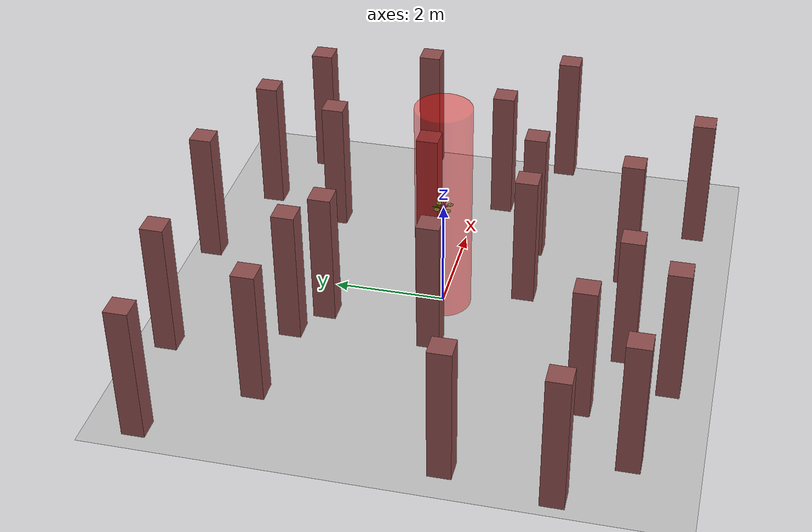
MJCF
<mujoco model="quadrotor0">
	<compiler coordinate="local" inertiafromgeom="true" />
	<option density="1" gravity="0 0 -9.81" timestep="0.01" viscosity="1e-5" />

	<visual> <map znear="0.00005" /> </visual>

	<worldbody>
		<geom conaffinity="1" condim="3" name="floor" pos="0 0 0" rgba="0.75 0.75 0.75 1" size="5 5 .2" type="plane" />
		<body name="quadrotor" pos="0 0 2">

			<camera fovy="35" mode="fixed" name="onbodycam_0" pos="0 0.06 0.05" xyaxes="1 0 0 0 0 1" />

			<geom mass=".1" name="core" pos="0 0 0" quat="1. 0. 0. 0" rgba="0.3 0.3 0.8 1" size="0.06 0.035 0.025" type="box" />

			<site name="site_sens_0" pos="0 0.15 0" size="0.001 0.001 0.001" type="box" zaxis="0. 1. 0." />

			<geom mass=".025" name="a00" pos=".071 0.071 0.0" quat=".924 0.0 0.0 0.383" rgba="0.3 0.3 0.8 1" size="0.05 0.01 0.0025" type="box" />
			<geom mass=".025" name="a10" pos=".071 -0.071 0.0" quat=".383 0.0 0.0 0.924" rgba="0.3 0.3 0.8 1" size="0.05 0.01 0.0025" type="box" />
			<geom mass=".025" name="a20" pos="-0.071 -0.071 0.0" quat="-.383 0.0 0.0 0.924" rgba="0.3 0.3 0.8 1" size="0.05 0.01 0.0025" type="box" />
			<geom mass=".025" name="a30" pos="-.071 0.071 0.0" quat=".924 0.0 0.0 -0.383" rgba="0.3 0.3 0.8 1" size="0.05 0.01 0.0025" type="box" />

			<joint armature="0" damping="0" name="root" pos="0 0 0" type="free" />

            <site name="motor0" pos=" 0.1  0.1 0.01" quat="1.0 0.0 0.0 0." rgba="0.3 0.8 0.3 1" size="0.01 0.0025" type="cylinder" />
            <site name="motor1" pos=" 0.1 -0.1 0.01" quat="1.0 0.0 0.0 0." rgba="0.3 0.8 0.3 1" size="0.01 0.0025" type="cylinder" />
            <site name="motor2" pos="-0.1 -0.1 0.01" quat="1.0 0.0 0.0 0." rgba="0.3 0.8 0.3 1" size="0.01 0.0025" type="cylinder" />
            <site name="motor3" pos="-0.1  0.1 0.01" quat="1.0 0.0 0.0 0." rgba="0.3 0.8 0.3 1" size="0.01 0.0025" type="cylinder" />

            <geom mass=".025" name="thruster0" pos=" 0.1  0.1  0.01" quat="1.0 0.0 0.0 0." rgba="0.3 0.8 0.3 1" size="0.05 0.0025" type="cylinder" />
            <geom mass=".025" name="thruster1" pos=" 0.1 -0.1  0.01" quat="1.0 0.0 0.0 0." rgba="0.3 0.8 0.3 1" size="0.05 0.0025" type="cylinder" />
            <geom mass=".025" name="thruster2" pos="-0.1 -0.1  0.01" quat="1.0 0.0 0.0 0." rgba="0.3 0.8 0.3 1" size="0.05 0.0025" type="cylinder" />
            <geom mass=".025" name="thruster3" pos="-0.1  0.1  0.01" quat="1.0 0.0 0.0 0." rgba="0.3 0.8 0.3 1" size="0.05 0.0025" type="cylinder" />

			<site name="qcX" pos="0.1 0.0 0.0" quat=" 1.000  0.0  0.0    0." rgba="1 0 0 1" size="0.1 0.005 0.005" type="box" />
			<site name="qcY" pos="0.0 0.1 0.0" quat=" 0.707  0.0  0.0    0.707" rgba="0 1 0 1" size="0.1 0.005 0.005" type="box" />
			<site name="qcZ" pos="0.0 0.0 0.1" quat="-0.707  0.0  0.707  0." rgba="0 0 1 1" size="0.1 0.005 0.005" type="box" />
		</body>

		<site name="goal_site" pos="0 0 2" rgba="1 0 0 0.4" size="0.5 2" type="cylinder" />

		<light cutoff="100" diffuse="1 1 1" dir="0 0 -1" directional="true" exponent="1" pos="0 0 10" specular=".1 .1 .1" />
		<light cutoff="100" diffuse="1 1 1" dir="0 0 1" directional="true" exponent="1" pos="0 0 0.25" specular=".1 .1 .1" />

	<geom pos="-3.582298456528937 -3.832101689138013 1.25" rgba="0.55 0.3 0.3 1" size="0.2 0.2 1.25" type="box" /><geom pos="-4.623274863860191 -2.7883436768035406 1.25" rgba="0.55 0.3 0.3 1" size="0.2 0.2 1.25" type="box" /><geom pos="-4.3651439554538465 -0.9534927958753088 1.25" rgba="0.55 0.3 0.3 1" size="0.2 0.2 1.25" type="box" /><geom pos="-3.188733672397595 2.513532480414314 1.25" rgba="0.55 0.3 0.3 1" size="0.2 0.2 1.25" type="box" /><geom pos="-4.511238518588293 4.109376511723287 1.25" rgba="0.55 0.3 0.3 1" size="0.2 0.2 1.25" type="box" /><geom pos="-1.6244760575516954 -4.253592261940074 1.25" rgba="0.55 0.3 0.3 1" size="0.2 0.2 1.25" type="box" /><geom pos="-2.415856030578116 -2.8537421945504953 1.25" rgba="0.55 0.3 0.3 1" size="0.2 0.2 1.25" type="box" /><geom pos="-1.2226439783803702 -0.04019875211000323 1.25" rgba="0.55 0.3 0.3 1" size="0.2 0.2 1.25" type="box" /><geom pos="-1.447073399183507 2.4011541010902793 1.25" rgba="0.55 0.3 0.3 1" size="0.2 0.2 1.25" type="box" /><geom pos="-2.2695635188589267 4.406579519420972 1.25" rgba="0.55 0.3 0.3 1" size="0.2 0.2 1.25" type="box" /><geom pos="-0.8923471978957704 -3.406949162123302 1.25" rgba="0.55 0.3 0.3 1" size="0.2 0.2 1.25" type="box" /><geom pos="0.4967661960703855 -1.402500936954412 1.25" rgba="0.55 0.3 0.3 1" size="0.2 0.2 1.25" type="box" /><geom pos="-0.7970869090072743 1.9559189326393929 1.25" rgba="0.55 0.3 0.3 1" size="0.2 0.2 1.25" type="box" /><geom pos="0.6124929495554572 4.601729187350104 1.25" rgba="0.55 0.3 0.3 1" size="0.2 0.2 1.25" type="box" /><geom pos="1.4154204538174 -3.141789369414654 1.25" rgba="0.55 0.3 0.3 1" size="0.2 0.2 1.25" type="box" /><geom pos="1.9424221432478306 -1.307410421825263 1.25" rgba="0.55 0.3 0.3 1" size="0.2 0.2 1.25" type="box" /><geom pos="1.4770916911958343 0.5972955192776428 1.25" rgba="0.55 0.3 0.3 1" size="0.2 0.2 1.25" type="box" /><geom pos="2.1729024851574525 2.57209114654349 1.25" rgba="0.55 0.3 0.3 1" size="0.2 0.2 1.25" type="box" /><geom pos="2.6639766127144884 4.013539097761931 1.25" rgba="0.55 0.3 0.3 1" size="0.2 0.2 1.25" type="box" /><geom pos="3.096016268491812 -4.236978121915676 1.25" rgba="0.55 0.3 0.3 1" size="0.2 0.2 1.25" type="box" /><geom pos="4.878700106817033 -1.4690435131142912 1.25" rgba="0.55 0.3 0.3 1" size="0.2 0.2 1.25" type="box" /><geom pos="3.2865797281724394 -0.46537959322934164 1.25" rgba="0.55 0.3 0.3 1" size="0.2 0.2 1.25" type="box" /><geom pos="4.568465101045637 1.2643071316563324 1.25" rgba="0.55 0.3 0.3 1" size="0.2 0.2 1.25" type="box" /><geom pos="4.167569292521792 3.352319555600659 1.25" rgba="0.55 0.3 0.3 1" size="0.2 0.2 1.25" type="box" /></worldbody>

	<sensor> <rangefinder name="sens_0" site="site_sens_0" /> </sensor>

    <actuator>
        <motor ctrllimited="true" ctrlrange="0.0 1.0" gear="0  0. 1. 0. 0. -0.1" site="motor0" />
        <motor ctrllimited="true" ctrlrange="0.0 1.0" gear="0  0. 1. 0. 0.  0.1" site="motor1" />
        <motor ctrllimited="true" ctrlrange="0.0 1.0" gear="0  0. 1. 0. 0. -0.1" site="motor2" />
        <motor ctrllimited="true" ctrlrange="0.0 1.0" gear="0  0. 1. 0. 0.  0.1" site="motor3" />
	</actuator>
</mujoco>
